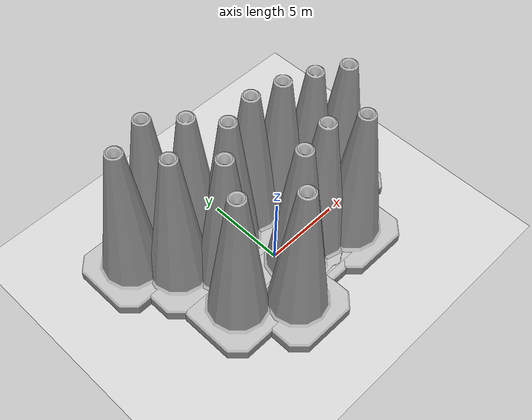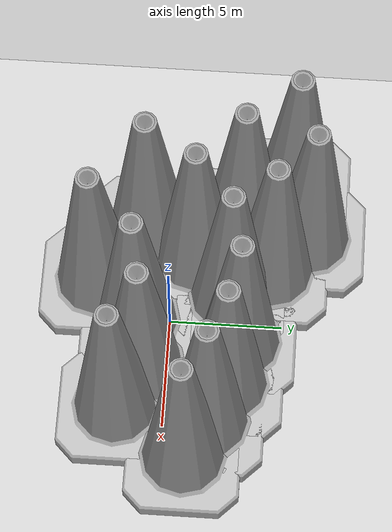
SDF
<sdf version="1.6">
 <world name="default">
  <light name="sun" type="directional">
   <pose>0 0 10 0 -0 0</pose>
   <diffuse>0.8 0.8 0.8 1</diffuse>
   <specular>0.2 0.2 0.2 1</specular>
   <attenuation>
    <range>1000</range>
    <constant>0.9</constant>
    <linear>0.01</linear>
    <quadratic>0.001</quadratic>
   </attenuation>
   <direction>-0.5 0.1 -0.9</direction>
   <spot><inner_angle>0</inner_angle><outer_angle>0</outer_angle><falloff>0</falloff></spot>
  </light>
  <model name="ground_plane">
   <static>1</static>
   <link name="link">
    <collision name="collision">
     <geometry><plane><normal>0 0 1</normal><size>100 100</size></plane></geometry>
     <surface>
      <contact><collide_bitmask>65535</collide_bitmask></contact>
      <friction><ode><mu>100</mu><mu2>50</mu2></ode></friction>
     </surface>
    </collision>
    <visual name="visual">
     <cast_shadows>0</cast_shadows>
     <geometry><plane><normal>0 0 1</normal><size>100 100</size></plane></geometry>
     <material>
      <script><uri>file://media/materials/scripts/gazebo.material</uri><name>Gazebo/Grey</name></script>
     </material>
    </visual>
   </link>
  </model>
  <gravity>0 0 -9.8</gravity>
  <magnetic_field>6e-06 2.3e-05 -4.2e-05</magnetic_field>
  <atmosphere type="adiabatic"/>
  <physics type="ode">
   <max_step_size>0.001</max_step_size>
   <real_time_factor>1</real_time_factor>
   <real_time_update_rate>1000</real_time_update_rate>
  </physics>
  <scene><ambient>0.4 0.4 0.4 1</ambient><background>0.7 0.7 0.7 1</background><shadows>1</shadows></scene>
  <spherical_coordinates>
   <surface_model>EARTH_WGS84</surface_model>
   <latitude_deg>0</latitude_deg>
   <longitude_deg>0</longitude_deg>
   <elevation>0</elevation>
   <heading_deg>0</heading_deg>
  </spherical_coordinates>
  <model name="Construction Cone">
   <link name="link">
    <collision name="collision">
     <geometry>
      <mesh><scale>100 100 100</scale><uri>model://construction_cone/meshes/construction_cone.dae</uri></mesh>
     </geometry>
    </collision>
    <visual name="visual">
     <geometry>
      <mesh><scale>100 100 100</scale><uri>model://construction_cone/meshes/construction_cone.dae</uri></mesh>
     </geometry>
    </visual>
    <inertial>
     <inertia><ixx>1</ixx><ixy>0</ixy><ixz>0</ixz><iyy>1</iyy><iyz>0</iyz><izz>1</izz></inertia>
     <mass>1</mass>
    </inertial>
   </link>
   <pose>-4.31803 -1.21562 0 0 -0 0</pose>
  </model>
  <model name="Construction Cone_clone">
   <link name="link">
    <collision name="collision">
     <geometry>
      <mesh><scale>100 100 100</scale><uri>model://construction_cone/meshes/construction_cone.dae</uri></mesh>
     </geometry>
    </collision>
    <visual name="visual">
     <geometry>
      <mesh><scale>100 100 100</scale><uri>model://construction_cone/meshes/construction_cone.dae</uri></mesh>
     </geometry>
    </visual>
    <inertial>
     <inertia><ixx>1</ixx><ixy>0</ixy><ixz>0</ixz><iyy>1</iyy><iyz>0</iyz><izz>1</izz></inertia>
     <mass>1</mass>
    </inertial>
   </link>
   <pose>-3 1 -0 0 -1e-06 0</pose>
  </model>
  <model name="Construction Cone_clone_0">
   <link name="link">
    <collision name="collision">
     <geometry>
      <mesh><scale>100 100 100</scale><uri>model://construction_cone/meshes/construction_cone.dae</uri></mesh>
     </geometry>
    </collision>
    <visual name="visual">
     <geometry>
      <mesh><scale>100 100 100</scale><uri>model://construction_cone/meshes/construction_cone.dae</uri></mesh>
     </geometry>
    </visual>
    <inertial>
     <inertia><ixx>1</ixx><ixy>0</ixy><ixz>0</ixz><iyy>1</iyy><iyz>0</iyz><izz>1</izz></inertia>
     <mass>1</mass>
    </inertial>
   </link>
   <pose>-1.12259 2.67344 -0 0 -1e-06 0</pose>
  </model>
  <model name="Construction Cone_clone_1">
   <link name="link">
    <collision name="collision">
     <geometry>
      <mesh><scale>100 100 100</scale><uri>model://construction_cone/meshes/construction_cone.dae</uri></mesh>
     </geometry>
    </collision>
    <visual name="visual">
     <geometry>
      <mesh><scale>100 100 100</scale><uri>model://construction_cone/meshes/construction_cone.dae</uri></mesh>
     </geometry>
    </visual>
    <inertial>
     <inertia><ixx>1</ixx><ixy>0</ixy><ixz>0</ixz><iyy>1</iyy><iyz>0</iyz><izz>1</izz></inertia>
     <mass>1</mass>
    </inertial>
   </link>
   <pose>1.05231 3.16013 -0 0 -1e-06 0</pose>
  </model>
  <model name="Construction Cone_clone_2">
   <link name="link">
    <collision name="collision">
     <geometry>
      <mesh><scale>100 100 100</scale><uri>model://construction_cone/meshes/construction_cone.dae</uri></mesh>
     </geometry>
    </collision>
    <visual name="visual">
     <geometry>
      <mesh><scale>100 100 100</scale><uri>model://construction_cone/meshes/construction_cone.dae</uri></mesh>
     </geometry>
    </visual>
    <inertial>
     <inertia><ixx>1</ixx><ixy>0</ixy><ixz>0</ixz><iyy>1</iyy><iyz>0</iyz><izz>1</izz></inertia>
     <mass>1</mass>
    </inertial>
   </link>
   <pose>3.06868 2.71587 -0 0 -1e-06 0</pose>
  </model>
  <model name="Construction Cone_clone_3">
   <link name="link">
    <collision name="collision">
     <geometry>
      <mesh><scale>100 100 100</scale><uri>model://construction_cone/meshes/construction_cone.dae</uri></mesh>
     </geometry>
    </collision>
    <visual name="visual">
     <geometry>
      <mesh><scale>100 100 100</scale><uri>model://construction_cone/meshes/construction_cone.dae</uri></mesh>
     </geometry>
    </visual>
    <inertial>
     <inertia><ixx>1</ixx><ixy>0</ixy><ixz>0</ixz><iyy>1</iyy><iyz>0</iyz><izz>1</izz></inertia>
     <mass>1</mass>
    </inertial>
   </link>
   <pose>4.85707 1.96912 -0 0 -1e-06 0</pose>
  </model>
  <model name="Construction Cone_clone_4">
   <link name="link">
    <collision name="collision">
     <geometry>
      <mesh><scale>100 100 100</scale><uri>model://construction_cone/meshes/construction_cone.dae</uri></mesh>
     </geometry>
    </collision>
    <visual name="visual">
     <geometry>
      <mesh><scale>100 100 100</scale><uri>model://construction_cone/meshes/construction_cone.dae</uri></mesh>
     </geometry>
    </visual>
    <inertial>
     <inertia><ixx>1</ixx><ixy>0</ixy><ixz>0</ixz><iyy>1</iyy><iyz>0</iyz><izz>1</izz></inertia>
     <mass>1</mass>
    </inertial>
   </link>
   <pose>6.58089 1.038 -0 0 -1e-06 0</pose>
  </model>
  <model name="Construction Cone_clone_5">
   <link name="link">
    <collision name="collision">
     <geometry>
      <mesh><scale>100 100 100</scale><uri>model://construction_cone/meshes/construction_cone.dae</uri></mesh>
     </geometry>
    </collision>
    <visual name="visual">
     <geometry>
      <mesh><scale>100 100 100</scale><uri>model://construction_cone/meshes/construction_cone.dae</uri></mesh>
     </geometry>
    </visual>
    <inertial>
     <inertia><ixx>1</ixx><ixy>0</ixy><ixz>0</ixz><iyy>1</iyy><iyz>0</iyz><izz>1</izz></inertia>
     <mass>1</mass>
    </inertial>
   </link>
   <pose>0.324463 -1.42655 -0 0 -1e-06 0</pose>
  </model>
  <model name="Construction Cone_clone_6">
   <link name="link">
    <collision name="collision">
     <geometry>
      <mesh><scale>100 100 100</scale><uri>model://construction_cone/meshes/construction_cone.dae</uri></mesh>
     </geometry>
    </collision>
    <visual name="visual">
     <geometry>
      <mesh><scale>100 100 100</scale><uri>model://construction_cone/meshes/construction_cone.dae</uri></mesh>
     </geometry>
    </visual>
    <inertial>
     <inertia><ixx>1</ixx><ixy>0</ixy><ixz>0</ixz><iyy>1</iyy><iyz>0</iyz><izz>1</izz></inertia>
     <mass>1</mass>
    </inertial>
   </link>
   <pose>2.52207 -1.03189 -0 0 -1e-06 0</pose>
  </model>
  <model name="Construction Cone_clone_7">
   <link name="link">
    <collision name="collision">
     <geometry>
      <mesh><scale>100 100 100</scale><uri>model://construction_cone/meshes/construction_cone.dae</uri></mesh>
     </geometry>
    </collision>
    <visual name="visual">
     <geometry>
      <mesh><scale>100 100 100</scale><uri>model://construction_cone/meshes/construction_cone.dae</uri></mesh>
     </geometry>
    </visual>
    <inertial>
     <inertia><ixx>1</ixx><ixy>0</ixy><ixz>0</ixz><iyy>1</iyy><iyz>0</iyz><izz>1</izz></inertia>
     <mass>1</mass>
    </inertial>
   </link>
   <pose>4.44511 -2.0877 -0 0 -1e-06 0</pose>
  </model>
  <model name="Construction Cone_clone_8">
   <link name="link">
    <collision name="collision">
     <geometry>
      <mesh><scale>100 100 100</scale><uri>model://construction_cone/meshes/construction_cone.dae</uri></mesh>
     </geometry>
    </collision>
    <visual name="visual">
     <geometry>
      <mesh><scale>100 100 100</scale><uri>model://construction_cone/meshes/construction_cone.dae</uri></mesh>
     </geometry>
    </visual>
    <inertial>
     <inertia><ixx>1</ixx><ixy>0</ixy><ixz>0</ixz><iyy>1</iyy><iyz>0</iyz><izz>1</izz></inertia>
     <mass>1</mass>
    </inertial>
   </link>
   <pose>-1.59831 -3.37381 -0 0 -1e-06 0</pose>
  </model>
  <model name="Construction Cone_clone_9">
   <link name="link">
    <collision name="collision">
     <geometry>
      <mesh><scale>100 100 100</scale><uri>model://construction_cone/meshes/construction_cone.dae</uri></mesh>
     </geometry>
    </collision>
    <visual name="visual">
     <geometry>
      <mesh><scale>100 100 100</scale><uri>model://construction_cone/meshes/construction_cone.dae</uri></mesh>
     </geometry>
    </visual>
    <inertial>
     <inertia><ixx>1</ixx><ixy>0</ixy><ixz>0</ixz><iyy>1</iyy><iyz>0</iyz><izz>1</izz></inertia>
     <mass>1</mass>
    </inertial>
   </link>
   <pose>-5 3 -0 0 -1e-06 0</pose>
  </model>
  <model name="Construction Cone_clone_10">
   <link name="link">
    <collision name="collision">
     <geometry>
      <mesh><scale>100 100 100</scale><uri>model://construction_cone/meshes/construction_cone.dae</uri></mesh>
     </geometry>
    </collision>
    <visual name="visual">
     <geometry>
      <mesh><scale>100 100 100</scale><uri>model://construction_cone/meshes/construction_cone.dae</uri></mesh>
     </geometry>
    </visual>
    <inertial>
     <inertia><ixx>1</ixx><ixy>0</ixy><ixz>0</ixz><iyy>1</iyy><iyz>0</iyz><izz>1</izz></inertia>
     <mass>1</mass>
    </inertial>
   </link>
   <pose>-2.47812 4.44463 -0 0 -1e-06 0</pose>
  </model>
  <model name="Construction Cone_clone_11">
   <link name="link">
    <collision name="collision">
     <geometry>
      <mesh><scale>100 100 100</scale><uri>model://construction_cone/meshes/construction_cone.dae</uri></mesh>
     </geometry>
    </collision>
    <visual name="visual">
     <geometry>
      <mesh><scale>100 100 100</scale><uri>model://construction_cone/meshes/construction_cone.dae</uri></mesh>
     </geometry>
    </visual>
    <inertial>
     <inertia><ixx>1</ixx><ixy>0</ixy><ixz>0</ixz><iyy>1</iyy><iyz>0</iyz><izz>1</izz></inertia>
     <mass>1</mass>
    </inertial>
   </link>
   <pose>-4.19381 6.02527 -0 0 -1e-06 0</pose>
  </model>
  <model name="Construction Cone_clone_12">
   <link name="link">
    <collision name="collision">
     <geometry>
      <mesh><scale>100 100 100</scale><uri>model://construction_cone/meshes/construction_cone.dae</uri></mesh>
     </geometry>
    </collision>
    <visual name="visual">
     <geometry>
      <mesh><scale>100 100 100</scale><uri>model://construction_cone/meshes/construction_cone.dae</uri></mesh>
     </geometry>
    </visual>
    <inertial>
     <inertia><ixx>1</ixx><ixy>0</ixy><ixz>0</ixz><iyy>1</iyy><iyz>0</iyz><izz>1</izz></inertia>
     <mass>1</mass>
    </inertial>
   </link>
   <pose>-6.70731 5.24393 -0 0 -1e-06 0</pose>
  </model>
 </world>
</sdf>
